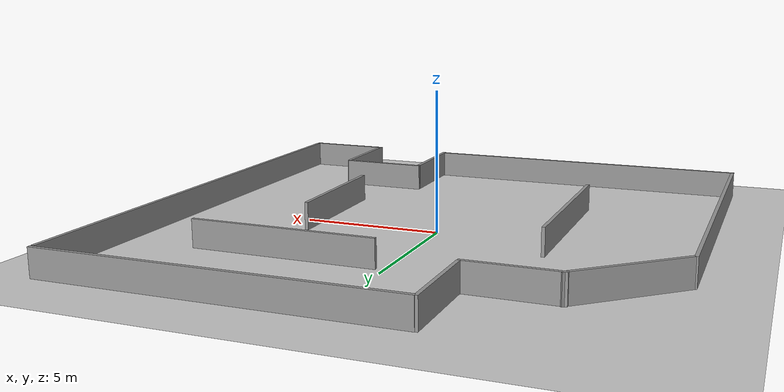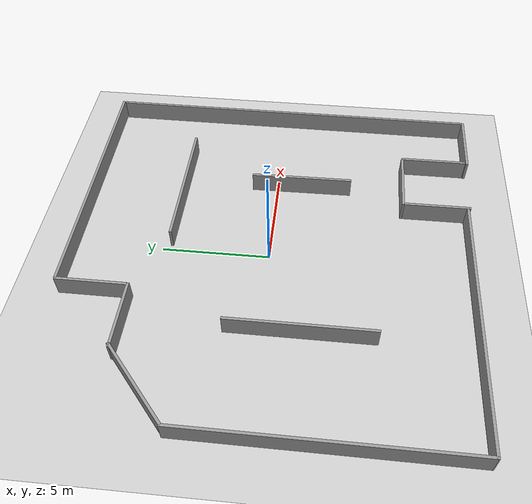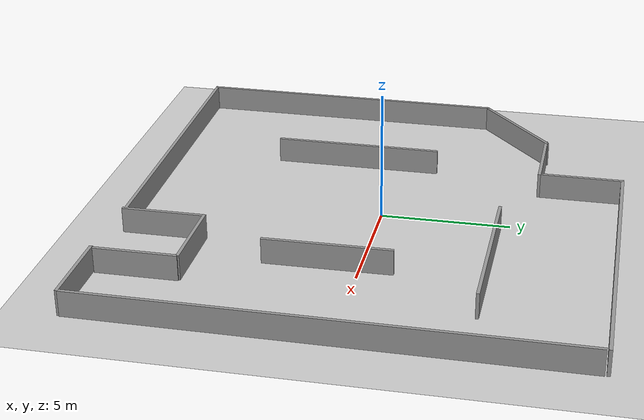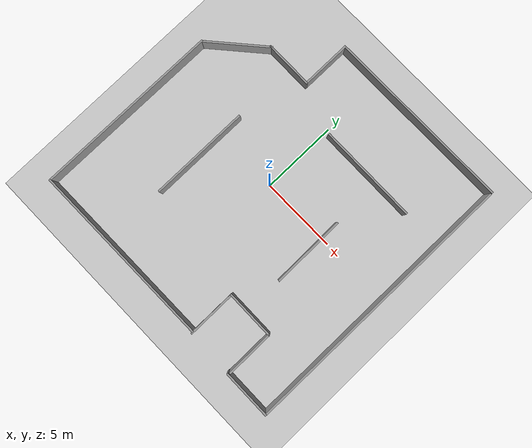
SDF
<sdf version="1.7">
 <world name="default">
  <light name="sun" type="directional">
   <pose>0 0 10 0 -0 0</pose>
   <diffuse>0.8 0.8 0.8 1</diffuse>
   <specular>0.2 0.2 0.2 1</specular>
   <attenuation>
    <range>1000</range>
    <constant>0.9</constant>
    <linear>0.01</linear>
    <quadratic>0.001</quadratic>
   </attenuation>
   <direction>-0.5 0.1 -0.9</direction>
   <spot><inner_angle>0</inner_angle><outer_angle>0</outer_angle><falloff>0</falloff></spot>
  </light>
  <model name="ground_plane">
   <static>1</static>
   <link name="link">
    <collision name="collision">
     <geometry><plane><normal>0 0 1</normal><size>100 100</size></plane></geometry>
     <surface>
      <contact><collide_bitmask>65535</collide_bitmask></contact>
      <friction><ode><mu>100</mu><mu2>50</mu2></ode></friction>
     </surface>
    </collision>
    <visual name="visual">
     <cast_shadows>0</cast_shadows>
     <geometry><plane><normal>0 0 1</normal><size>100 100</size></plane></geometry>
     <material>
      <script><uri>file://media/materials/scripts/gazebo.material</uri><name>Gazebo/Grey</name></script>
     </material>
    </visual>
   </link>
  </model>
  <gravity>0 0 -9.8</gravity>
  <magnetic_field>6e-06 2.3e-05 -4.2e-05</magnetic_field>
  <atmosphere type="adiabatic"/>
  <physics type="ode">
   <max_step_size>0.001</max_step_size>
   <real_time_factor>1</real_time_factor>
   <real_time_update_rate>1000</real_time_update_rate>
  </physics>
  <scene><ambient>0.4 0.4 0.4 1</ambient><background>0.7 0.7 0.7 1</background><shadows>1</shadows></scene>
  <spherical_coordinates>
   <surface_model>EARTH_WGS84</surface_model>
   <latitude_deg>0</latitude_deg>
   <longitude_deg>0</longitude_deg>
   <elevation>0</elevation>
   <heading_deg>0</heading_deg>
  </spherical_coordinates>
  <model name="paredemapping">
   <link name="link_0">
    <inertial>
     <mass>1.55641</mass>
     <inertia><ixx>20.0874</ixx><ixy>0</ixy><ixz>0</ixz><iyy>0.131744</iyy><iyz>0</iyz><izz>19.9597</izz></inertia>
    </inertial>
    <pose>2.53046 10.1722 0 0 0 -1.5676</pose>
    <visual name="visual">
     <geometry><box><size>0.125495 12.4046 1</size></box></geometry>
     <material>
      <lighting>1</lighting>
      <script><uri>file://media/materials/scripts/gazebo.material</uri><name>Gazebo/Grey</name></script>
      <shader type="pixel"/>
     </material>
    </visual>
    <collision name="collision">
     <geometry><box><size>0.125495 12.4046 1</size></box></geometry>
     <surface>
      <friction>
       <ode><mu>1</mu><mu2>1</mu2><fdir1>0 0 0</fdir1><slip1>0</slip1><slip2>0</slip2></ode>
       <torsional>
        <coefficient>1</coefficient>
        <patch_radius>0</patch_radius>
        <surface_radius>0</surface_radius>
        <use_patch_radius>1</use_patch_radius>
        <ode><slip>0</slip></ode>
       </torsional>
      </friction>
      <bounce><restitution_coefficient>0</restitution_coefficient><threshold>1e+06</threshold></bounce>
      <contact>
       <collide_without_contact>0</collide_without_contact>
       <collide_without_contact_bitmask>1</collide_without_contact_bitmask>
       <collide_bitmask>1</collide_bitmask>
       <ode>
        <soft_cfm>0</soft_cfm>
        <soft_erp>0.2</soft_erp>
        <kp>1e+13</kp>
        <kd>1</kd>
        <max_vel>0.01</max_vel>
        <min_depth>0</min_depth>
       </ode>
       <bullet>
        <split_impulse>1</split_impulse>
        <split_impulse_penetration_threshold>-0.01</split_impulse_penetration_threshold>
        <soft_cfm>0</soft_cfm>
        <soft_erp>0.2</soft_erp>
        <kp>1e+13</kp>
        <kd>1</kd>
       </bullet>
      </contact>
     </surface>
    </collision>
   </link>
   <link name="link_0_clone">
    <inertial>
     <mass>2.30975</mass>
     <inertia><ixx>65.4202</ixx><ixy>0</ixy><ixz>0</ixz><iyy>0.195511</iyy><iyz>0</iyz><izz>65.2307</izz></inertia>
    </inertial>
    <pose>8.65116 0.872805 0 0 -0 3.13777</pose>
    <visual name="visual">
     <geometry><box><size>0.125495 18.4087 1</size></box></geometry>
     <material>
      <lighting>1</lighting>
      <script><uri>file://media/materials/scripts/gazebo.material</uri><name>Gazebo/Grey</name></script>
      <shader type="pixel"/>
     </material>
    </visual>
    <collision name="collision">
     <geometry><box><size>0.125495 18.4087 1</size></box></geometry>
     <surface>
      <friction>
       <ode><mu>1</mu><mu2>1</mu2><fdir1>0 0 0</fdir1><slip1>0</slip1><slip2>0</slip2></ode>
       <torsional>
        <coefficient>1</coefficient>
        <patch_radius>0</patch_radius>
        <surface_radius>0</surface_radius>
        <use_patch_radius>1</use_patch_radius>
        <ode><slip>0</slip></ode>
       </torsional>
      </friction>
      <bounce><restitution_coefficient>0</restitution_coefficient><threshold>1e+06</threshold></bounce>
      <contact>
       <collide_without_contact>0</collide_without_contact>
       <collide_without_contact_bitmask>1</collide_without_contact_bitmask>
       <collide_bitmask>1</collide_bitmask>
       <ode>
        <soft_cfm>0</soft_cfm>
        <soft_erp>0.2</soft_erp>
        <kp>1e+13</kp>
        <kd>1</kd>
        <max_vel>0.01</max_vel>
        <min_depth>0</min_depth>
       </ode>
       <bullet>
        <split_impulse>1</split_impulse>
        <split_impulse_penetration_threshold>-0.01</split_impulse_penetration_threshold>
        <soft_cfm>0</soft_cfm>
        <soft_erp>0.2</soft_erp>
        <kp>1e+13</kp>
        <kd>1</kd>
       </bullet>
      </contact>
     </surface>
    </collision>
   </link>
   <link name="link_0_clone_0">
    <inertial>
     <mass>0.407182</mass>
     <inertia>
      <ixx>0.39129</ixx>
      <ixy>0</ixy>
      <ixz>0</ixz>
      <iyy>0.0344663</iyy>
      <iyz>0</iyz>
      <izz>0.357892</izz>
     </inertia>
    </inertial>
    <pose>-3.70392 8.57587 0 0 -0 3.14029</pose>
    <visual name="visual">
     <geometry><box><size>0.125495 3.24525 1</size></box></geometry>
     <material>
      <lighting>1</lighting>
      <script><uri>file://media/materials/scripts/gazebo.material</uri><name>Gazebo/Grey</name></script>
      <shader type="pixel"/>
     </material>
    </visual>
    <collision name="collision">
     <geometry><box><size>0.125495 3.24525 1</size></box></geometry>
     <surface>
      <friction>
       <ode><mu>1</mu><mu2>1</mu2><fdir1>0 0 0</fdir1><slip1>0</slip1><slip2>0</slip2></ode>
       <torsional>
        <coefficient>1</coefficient>
        <patch_radius>0</patch_radius>
        <surface_radius>0</surface_radius>
        <use_patch_radius>1</use_patch_radius>
        <ode><slip>0</slip></ode>
       </torsional>
      </friction>
      <bounce><restitution_coefficient>0</restitution_coefficient><threshold>1e+06</threshold></bounce>
      <contact>
       <collide_without_contact>0</collide_without_contact>
       <collide_without_contact_bitmask>1</collide_without_contact_bitmask>
       <collide_bitmask>1</collide_bitmask>
       <ode>
        <soft_cfm>0</soft_cfm>
        <soft_erp>0.2</soft_erp>
        <kp>1e+13</kp>
        <kd>1</kd>
        <max_vel>0.01</max_vel>
        <min_depth>0</min_depth>
       </ode>
       <bullet>
        <split_impulse>1</split_impulse>
        <split_impulse_penetration_threshold>-0.01</split_impulse_penetration_threshold>
        <soft_cfm>0</soft_cfm>
        <soft_erp>0.2</soft_erp>
        <kp>1e+13</kp>
        <kd>1</kd>
       </bullet>
      </contact>
     </surface>
    </collision>
   </link>
   <link name="link_0_clone_0_clone">
    <inertial>
     <mass>0.407182</mass>
     <inertia>
      <ixx>0.39129</ixx>
      <ixy>0</ixy>
      <ixz>0</ixz>
      <iyy>0.0344663</iyy>
      <iyz>0</iyz>
      <izz>0.357892</izz>
     </inertia>
    </inertial>
    <pose>-5.27399 6.91366 0 0 -0 1.56615</pose>
    <visual name="visual">
     <geometry><box><size>0.125495 3.24525 1</size></box></geometry>
     <material>
      <lighting>1</lighting>
      <script><uri>file://media/materials/scripts/gazebo.material</uri><name>Gazebo/Grey</name></script>
      <shader type="pixel"/>
     </material>
    </visual>
    <collision name="collision">
     <geometry><box><size>0.125495 3.24525 1</size></box></geometry>
     <surface>
      <friction>
       <ode><mu>1</mu><mu2>1</mu2><fdir1>0 0 0</fdir1><slip1>0</slip1><slip2>0</slip2></ode>
       <torsional>
        <coefficient>1</coefficient>
        <patch_radius>0</patch_radius>
        <surface_radius>0</surface_radius>
        <use_patch_radius>1</use_patch_radius>
        <ode><slip>0</slip></ode>
       </torsional>
      </friction>
      <bounce><restitution_coefficient>0</restitution_coefficient><threshold>1e+06</threshold></bounce>
      <contact>
       <collide_without_contact>0</collide_without_contact>
       <collide_without_contact_bitmask>1</collide_without_contact_bitmask>
       <collide_bitmask>1</collide_bitmask>
       <ode>
        <soft_cfm>0</soft_cfm>
        <soft_erp>0.2</soft_erp>
        <kp>1e+13</kp>
        <kd>1</kd>
        <max_vel>0.01</max_vel>
        <min_depth>0</min_depth>
       </ode>
       <bullet>
        <split_impulse>1</split_impulse>
        <split_impulse_penetration_threshold>-0.01</split_impulse_penetration_threshold>
        <soft_cfm>0</soft_cfm>
        <soft_erp>0.2</soft_erp>
        <kp>1e+13</kp>
        <kd>1</kd>
       </bullet>
      </contact>
     </surface>
    </collision>
   </link>
   <link name="link_0_clone_0_clone_0">
    <inertial>
     <mass>0.545738</mass>
     <inertia>
      <ixx>0.905857</ixx>
      <ixy>0</ixy>
      <ixz>0</ixz>
      <iyy>0.0461944</iyy>
      <iyz>0</iyz>
      <izz>0.861095</izz>
     </inertia>
    </inertial>
    <pose>-8.34095 5.56049 0 0 -0 2.28859</pose>
    <visual name="visual">
     <geometry><box><size>0.125495 4.34954 1</size></box></geometry>
     <material>
      <lighting>1</lighting>
      <script><uri>file://media/materials/scripts/gazebo.material</uri><name>Gazebo/Grey</name></script>
      <shader type="pixel"/>
     </material>
    </visual>
    <collision name="collision">
     <geometry><box><size>0.125495 4.34954 1</size></box></geometry>
     <surface>
      <friction>
       <ode><mu>1</mu><mu2>1</mu2><fdir1>0 0 0</fdir1><slip1>0</slip1><slip2>0</slip2></ode>
       <torsional>
        <coefficient>1</coefficient>
        <patch_radius>0</patch_radius>
        <surface_radius>0</surface_radius>
        <use_patch_radius>1</use_patch_radius>
        <ode><slip>0</slip></ode>
       </torsional>
      </friction>
      <bounce><restitution_coefficient>0</restitution_coefficient><threshold>1e+06</threshold></bounce>
      <contact>
       <collide_without_contact>0</collide_without_contact>
       <collide_without_contact_bitmask>1</collide_without_contact_bitmask>
       <collide_bitmask>1</collide_bitmask>
       <ode>
        <soft_cfm>0</soft_cfm>
        <soft_erp>0.2</soft_erp>
        <kp>1e+13</kp>
        <kd>1</kd>
        <max_vel>0.01</max_vel>
        <min_depth>0</min_depth>
       </ode>
       <bullet>
        <split_impulse>1</split_impulse>
        <split_impulse_penetration_threshold>-0.01</split_impulse_penetration_threshold>
        <soft_cfm>0</soft_cfm>
        <soft_erp>0.2</soft_erp>
        <kp>1e+13</kp>
        <kd>1</kd>
       </bullet>
      </contact>
     </surface>
    </collision>
   </link>
   <link name="link_0_clone_0_clone_clone">
    <inertial>
     <mass>0.407182</mass>
     <inertia>
      <ixx>0.39129</ixx>
      <ixy>0</ixy>
      <ixz>0</ixz>
      <iyy>0.0344663</iyy>
      <iyz>0</iyz>
      <izz>0.357892</izz>
     </inertia>
    </inertial>
    <pose>3.88281 -5.08461 0 0 -0 1.56615</pose>
    <visual name="visual">
     <geometry><box><size>0.125495 3.24525 1</size></box></geometry>
     <material>
      <lighting>1</lighting>
      <script><uri>file://media/materials/scripts/gazebo.material</uri><name>Gazebo/Grey</name></script>
      <shader type="pixel"/>
     </material>
    </visual>
    <collision name="collision">
     <geometry><box><size>0.125495 3.24525 1</size></box></geometry>
     <surface>
      <friction>
       <ode><mu>1</mu><mu2>1</mu2><fdir1>0 0 0</fdir1><slip1>0</slip1><slip2>0</slip2></ode>
       <torsional>
        <coefficient>1</coefficient>
        <patch_radius>0</patch_radius>
        <surface_radius>0</surface_radius>
        <use_patch_radius>1</use_patch_radius>
        <ode><slip>0</slip></ode>
       </torsional>
      </friction>
      <bounce><restitution_coefficient>0</restitution_coefficient><threshold>1e+06</threshold></bounce>
      <contact>
       <collide_without_contact>0</collide_without_contact>
       <collide_without_contact_bitmask>1</collide_without_contact_bitmask>
       <collide_bitmask>1</collide_bitmask>
       <ode>
        <soft_cfm>0</soft_cfm>
        <soft_erp>0.2</soft_erp>
        <kp>1e+13</kp>
        <kd>1</kd>
        <max_vel>0.01</max_vel>
        <min_depth>0</min_depth>
       </ode>
       <bullet>
        <split_impulse>1</split_impulse>
        <split_impulse_penetration_threshold>-0.01</split_impulse_penetration_threshold>
        <soft_cfm>0</soft_cfm>
        <soft_erp>0.2</soft_erp>
        <kp>1e+13</kp>
        <kd>1</kd>
       </bullet>
      </contact>
     </surface>
    </collision>
   </link>
   <link name="link_0_clone_0_clone_clone_clone">
    <inertial>
     <mass>0.407182</mass>
     <inertia>
      <ixx>0.39129</ixx>
      <ixy>0</ixy>
      <ixz>0</ixz>
      <iyy>0.0344663</iyy>
      <iyz>0</iyz>
      <izz>0.357892</izz>
     </inertia>
    </inertial>
    <pose>7.02736 -8.35116 0 0 -0 1.56615</pose>
    <visual name="visual">
     <geometry><box><size>0.125495 3.24525 1</size></box></geometry>
     <material>
      <lighting>1</lighting>
      <script><uri>file://media/materials/scripts/gazebo.material</uri><name>Gazebo/Grey</name></script>
      <shader type="pixel"/>
     </material>
    </visual>
    <collision name="collision">
     <geometry><box><size>0.125495 3.24525 1</size></box></geometry>
     <surface>
      <friction>
       <ode><mu>1</mu><mu2>1</mu2><fdir1>0 0 0</fdir1><slip1>0</slip1><slip2>0</slip2></ode>
       <torsional>
        <coefficient>1</coefficient>
        <patch_radius>0</patch_radius>
        <surface_radius>0</surface_radius>
        <use_patch_radius>1</use_patch_radius>
        <ode><slip>0</slip></ode>
       </torsional>
      </friction>
      <bounce><restitution_coefficient>0</restitution_coefficient><threshold>1e+06</threshold></bounce>
      <contact>
       <collide_without_contact>0</collide_without_contact>
       <collide_without_contact_bitmask>1</collide_without_contact_bitmask>
       <collide_bitmask>1</collide_bitmask>
       <ode>
        <soft_cfm>0</soft_cfm>
        <soft_erp>0.2</soft_erp>
        <kp>1e+13</kp>
        <kd>1</kd>
        <max_vel>0.01</max_vel>
        <min_depth>0</min_depth>
       </ode>
       <bullet>
        <split_impulse>1</split_impulse>
        <split_impulse_penetration_threshold>-0.01</split_impulse_penetration_threshold>
        <soft_cfm>0</soft_cfm>
        <soft_erp>0.2</soft_erp>
        <kp>1e+13</kp>
        <kd>1</kd>
       </bullet>
      </contact>
     </surface>
    </collision>
   </link>
   <link name="link_0_clone_0_clone_clone_clone_0">
    <inertial>
     <mass>0.832673</mass>
     <inertia>
      <ixx>3.12544</ixx>
      <ixy>0</ixy>
      <ixz>0</ixz>
      <iyy>0.0704822</iyy>
      <iyz>0</iyz>
      <izz>3.05714</izz>
     </inertia>
    </inertial>
    <pose>2.75404 5.67464 0 0 -0 1.56615</pose>
    <visual name="visual">
     <geometry><box><size>0.125495 6.63642 1</size></box></geometry>
     <material>
      <lighting>1</lighting>
      <script><uri>file://media/materials/scripts/gazebo.material</uri><name>Gazebo/Grey</name></script>
      <shader type="pixel"/>
     </material>
    </visual>
    <collision name="collision">
     <geometry><box><size>0.125495 6.63642 1</size></box></geometry>
     <surface>
      <friction>
       <ode><mu>1</mu><mu2>1</mu2><fdir1>0 0 0</fdir1><slip1>0</slip1><slip2>0</slip2></ode>
       <torsional>
        <coefficient>1</coefficient>
        <patch_radius>0</patch_radius>
        <surface_radius>0</surface_radius>
        <use_patch_radius>1</use_patch_radius>
        <ode><slip>0</slip></ode>
       </torsional>
      </friction>
      <bounce><restitution_coefficient>0</restitution_coefficient><threshold>1e+06</threshold></bounce>
      <contact>
       <collide_without_contact>0</collide_without_contact>
       <collide_without_contact_bitmask>1</collide_without_contact_bitmask>
       <collide_bitmask>1</collide_bitmask>
       <ode>
        <soft_cfm>0</soft_cfm>
        <soft_erp>0.2</soft_erp>
        <kp>1e+13</kp>
        <kd>1</kd>
        <max_vel>0.01</max_vel>
        <min_depth>0</min_depth>
       </ode>
       <bullet>
        <split_impulse>1</split_impulse>
        <split_impulse_penetration_threshold>-0.01</split_impulse_penetration_threshold>
        <soft_cfm>0</soft_cfm>
        <soft_erp>0.2</soft_erp>
        <kp>1e+13</kp>
        <kd>1</kd>
       </bullet>
      </contact>
     </surface>
    </collision>
   </link>
   <link name="link_0_clone_0_clone_clone_clone_0_clone">
    <inertial>
     <mass>0.832673</mass>
     <inertia>
      <ixx>3.12544</ixx>
      <ixy>0</ixy>
      <ixz>0</ixz>
      <iyy>0.0704822</iyy>
      <iyz>0</iyz>
      <izz>3.05714</izz>
     </inertia>
    </inertial>
    <pose>-5.0654 -0.690107 0 0 -0 3.14025</pose>
    <visual name="visual">
     <geometry><box><size>0.125495 6.63642 1</size></box></geometry>
     <material>
      <lighting>1</lighting>
      <script><uri>file://media/materials/scripts/gazebo.material</uri><name>Gazebo/Grey</name></script>
      <shader type="pixel"/>
     </material>
    </visual>
    <collision name="collision">
     <geometry><box><size>0.125495 6.63642 1</size></box></geometry>
     <surface>
      <friction>
       <ode><mu>1</mu><mu2>1</mu2><fdir1>0 0 0</fdir1><slip1>0</slip1><slip2>0</slip2></ode>
       <torsional>
        <coefficient>1</coefficient>
        <patch_radius>0</patch_radius>
        <surface_radius>0</surface_radius>
        <use_patch_radius>1</use_patch_radius>
        <ode><slip>0</slip></ode>
       </torsional>
      </friction>
      <bounce><restitution_coefficient>0</restitution_coefficient><threshold>1e+06</threshold></bounce>
      <contact>
       <collide_without_contact>0</collide_without_contact>
       <collide_without_contact_bitmask>1</collide_without_contact_bitmask>
       <collide_bitmask>1</collide_bitmask>
       <ode>
        <soft_cfm>0</soft_cfm>
        <soft_erp>0.2</soft_erp>
        <kp>1e+13</kp>
        <kd>1</kd>
        <max_vel>0.01</max_vel>
        <min_depth>0</min_depth>
       </ode>
       <bullet>
        <split_impulse>1</split_impulse>
        <split_impulse_penetration_threshold>-0.01</split_impulse_penetration_threshold>
        <soft_cfm>0</soft_cfm>
        <soft_erp>0.2</soft_erp>
        <kp>1e+13</kp>
        <kd>1</kd>
       </bullet>
      </contact>
     </surface>
    </collision>
   </link>
   <link name="link_0_clone_0_clone_clone_clone_0_clone_0">
    <inertial>
     <mass>0.613952</mass>
     <inertia>
      <ixx>1.27618</ixx>
      <ixy>0</ixy>
      <ixz>0</ixz>
      <iyy>0.0519685</iyy>
      <iyz>0</iyz>
      <izz>1.22582</izz>
     </inertia>
    </inertial>
    <pose>3.63547 -0.089577 0 0 -0 -3.13137</pose>
    <visual name="visual">
     <geometry><box><size>0.125495 4.89322 1</size></box></geometry>
     <material>
      <lighting>1</lighting>
      <script><uri>file://media/materials/scripts/gazebo.material</uri><name>Gazebo/Grey</name></script>
      <shader type="pixel"/>
     </material>
    </visual>
    <collision name="collision">
     <geometry><box><size>0.125495 4.89322 1</size></box></geometry>
     <surface>
      <friction>
       <ode><mu>1</mu><mu2>1</mu2><fdir1>0 0 0</fdir1><slip1>0</slip1><slip2>0</slip2></ode>
       <torsional>
        <coefficient>1</coefficient>
        <patch_radius>0</patch_radius>
        <surface_radius>0</surface_radius>
        <use_patch_radius>1</use_patch_radius>
        <ode><slip>0</slip></ode>
       </torsional>
      </friction>
      <bounce><restitution_coefficient>0</restitution_coefficient><threshold>1e+06</threshold></bounce>
      <contact>
       <collide_without_contact>0</collide_without_contact>
       <collide_without_contact_bitmask>1</collide_without_contact_bitmask>
       <collide_bitmask>1</collide_bitmask>
       <ode>
        <soft_cfm>0</soft_cfm>
        <soft_erp>0.2</soft_erp>
        <kp>1e+13</kp>
        <kd>1</kd>
        <max_vel>0.01</max_vel>
        <min_depth>0</min_depth>
       </ode>
       <bullet>
        <split_impulse>1</split_impulse>
        <split_impulse_penetration_threshold>-0.01</split_impulse_penetration_threshold>
        <soft_cfm>0</soft_cfm>
        <soft_erp>0.2</soft_erp>
        <kp>1e+13</kp>
        <kd>1</kd>
       </bullet>
      </contact>
     </surface>
    </collision>
   </link>
   <link name="link_0_clone_1">
    <inertial>
     <mass>1.55641</mass>
     <inertia><ixx>20.0874</ixx><ixy>0</ixy><ixz>0</ixz><iyy>0.131744</iyy><iyz>0</iyz><izz>19.9597</izz></inertia>
    </inertial>
    <pose>-3.8982 -8.16943 0 0 0 -1.5676</pose>
    <visual name="visual">
     <geometry><box><size>0.125495 12.4046 1</size></box></geometry>
     <material>
      <lighting>1</lighting>
      <script><uri>file://media/materials/scripts/gazebo.material</uri><name>Gazebo/Grey</name></script>
      <shader type="pixel"/>
     </material>
    </visual>
    <collision name="collision">
     <geometry><box><size>0.125495 12.4046 1</size></box></geometry>
     <surface>
      <friction>
       <ode><mu>1</mu><mu2>1</mu2><fdir1>0 0 0</fdir1><slip1>0</slip1><slip2>0</slip2></ode>
       <torsional>
        <coefficient>1</coefficient>
        <patch_radius>0</patch_radius>
        <surface_radius>0</surface_radius>
        <use_patch_radius>1</use_patch_radius>
        <ode><slip>0</slip></ode>
       </torsional>
      </friction>
      <bounce><restitution_coefficient>0</restitution_coefficient><threshold>1e+06</threshold></bounce>
      <contact>
       <collide_without_contact>0</collide_without_contact>
       <collide_without_contact_bitmask>1</collide_without_contact_bitmask>
       <collide_bitmask>1</collide_bitmask>
       <ode>
        <soft_cfm>0</soft_cfm>
        <soft_erp>0.2</soft_erp>
        <kp>1e+13</kp>
        <kd>1</kd>
        <max_vel>0.01</max_vel>
        <min_depth>0</min_depth>
       </ode>
       <bullet>
        <split_impulse>1</split_impulse>
        <split_impulse_penetration_threshold>-0.01</split_impulse_penetration_threshold>
        <soft_cfm>0</soft_cfm>
        <soft_erp>0.2</soft_erp>
        <kp>1e+13</kp>
        <kd>1</kd>
       </bullet>
      </contact>
     </surface>
    </collision>
   </link>
   <link name="link_0_clone_2">
    <inertial>
     <mass>0.396797</mass>
     <inertia>
      <ixx>0.363771</ixx>
      <ixy>0</ixy>
      <ixz>0</ixz>
      <iyy>0.0335872</iyy>
      <iyz>0</iyz>
      <izz>0.331225</izz>
     </inertia>
    </inertial>
    <pose>2.31812 -6.70524 0 0 0 -3.1402</pose>
    <visual name="visual">
     <geometry><box><size>0.125495 3.16247 1</size></box></geometry>
     <material>
      <lighting>1</lighting>
      <script><uri>file://media/materials/scripts/gazebo.material</uri><name>Gazebo/Grey</name></script>
      <shader type="pixel"/>
     </material>
    </visual>
    <collision name="collision">
     <geometry><box><size>0.125495 3.16247 1</size></box></geometry>
     <surface>
      <friction>
       <ode><mu>1</mu><mu2>1</mu2><fdir1>0 0 0</fdir1><slip1>0</slip1><slip2>0</slip2></ode>
       <torsional>
        <coefficient>1</coefficient>
        <patch_radius>0</patch_radius>
        <surface_radius>0</surface_radius>
        <use_patch_radius>1</use_patch_radius>
        <ode><slip>0</slip></ode>
       </torsional>
      </friction>
      <bounce><restitution_coefficient>0</restitution_coefficient><threshold>1e+06</threshold></bounce>
      <contact>
       <collide_without_contact>0</collide_without_contact>
       <collide_without_contact_bitmask>1</collide_without_contact_bitmask>
       <collide_bitmask>1</collide_bitmask>
       <ode>
        <soft_cfm>0</soft_cfm>
        <soft_erp>0.2</soft_erp>
        <kp>1e+13</kp>
        <kd>1</kd>
        <max_vel>0.01</max_vel>
        <min_depth>0</min_depth>
       </ode>
       <bullet>
        <split_impulse>1</split_impulse>
        <split_impulse_penetration_threshold>-0.01</split_impulse_penetration_threshold>
        <soft_cfm>0</soft_cfm>
        <soft_erp>0.2</soft_erp>
        <kp>1e+13</kp>
        <kd>1</kd>
       </bullet>
      </contact>
     </surface>
    </collision>
   </link>
   <link name="link_0_clone_2_clone">
    <inertial>
     <mass>0.396797</mass>
     <inertia>
      <ixx>0.363771</ixx>
      <ixy>0</ixy>
      <ixz>0</ixz>
      <iyy>0.0335872</iyy>
      <iyz>0</iyz>
      <izz>0.331225</izz>
     </inertia>
    </inertial>
    <pose>5.50136 -6.67202 0 0 0 -3.1402</pose>
    <visual name="visual">
     <geometry><box><size>0.125495 3.16247 1</size></box></geometry>
     <material>
      <lighting>1</lighting>
      <script><uri>file://media/materials/scripts/gazebo.material</uri><name>Gazebo/Grey</name></script>
      <shader type="pixel"/>
     </material>
    </visual>
    <collision name="collision">
     <geometry><box><size>0.125495 3.16247 1</size></box></geometry>
     <surface>
      <friction>
       <ode><mu>1</mu><mu2>1</mu2><fdir1>0 0 0</fdir1><slip1>0</slip1><slip2>0</slip2></ode>
       <torsional>
        <coefficient>1</coefficient>
        <patch_radius>0</patch_radius>
        <surface_radius>0</surface_radius>
        <use_patch_radius>1</use_patch_radius>
        <ode><slip>0</slip></ode>
       </torsional>
      </friction>
      <bounce><restitution_coefficient>0</restitution_coefficient><threshold>1e+06</threshold></bounce>
      <contact>
       <collide_without_contact>0</collide_without_contact>
       <collide_without_contact_bitmask>1</collide_without_contact_bitmask>
       <collide_bitmask>1</collide_bitmask>
       <ode>
        <soft_cfm>0</soft_cfm>
        <soft_erp>0.2</soft_erp>
        <kp>1e+13</kp>
        <kd>1</kd>
        <max_vel>0.01</max_vel>
        <min_depth>0</min_depth>
       </ode>
       <bullet>
        <split_impulse>1</split_impulse>
        <split_impulse_penetration_threshold>-0.01</split_impulse_penetration_threshold>
        <soft_cfm>0</soft_cfm>
        <soft_erp>0.2</soft_erp>
        <kp>1e+13</kp>
        <kd>1</kd>
       </bullet>
      </contact>
     </surface>
    </collision>
   </link>
   <link name="link_0_clone_clone">
    <inertial>
     <mass>1.55641</mass>
     <inertia><ixx>20.0874</ixx><ixy>0</ixy><ixz>0</ixz><iyy>0.131744</iyy><iyz>0</iyz><izz>19.9597</izz></inertia>
    </inertial>
    <pose>-10.0183 -2.00748 0 0 -0 3.13777</pose>
    <visual name="visual">
     <geometry><box><size>0.125495 12.4046 1</size></box></geometry>
     <material>
      <lighting>1</lighting>
      <script><uri>file://media/materials/scripts/gazebo.material</uri><name>Gazebo/Grey</name></script>
      <shader type="pixel"/>
     </material>
    </visual>
    <collision name="collision">
     <geometry><box><size>0.125495 12.4046 1</size></box></geometry>
     <surface>
      <friction>
       <ode><mu>1</mu><mu2>1</mu2><fdir1>0 0 0</fdir1><slip1>0</slip1><slip2>0</slip2></ode>
       <torsional>
        <coefficient>1</coefficient>
        <patch_radius>0</patch_radius>
        <surface_radius>0</surface_radius>
        <use_patch_radius>1</use_patch_radius>
        <ode><slip>0</slip></ode>
       </torsional>
      </friction>
      <bounce><restitution_coefficient>0</restitution_coefficient><threshold>1e+06</threshold></bounce>
      <contact>
       <collide_without_contact>0</collide_without_contact>
       <collide_without_contact_bitmask>1</collide_without_contact_bitmask>
       <collide_bitmask>1</collide_bitmask>
       <ode>
        <soft_cfm>0</soft_cfm>
        <soft_erp>0.2</soft_erp>
        <kp>1e+13</kp>
        <kd>1</kd>
        <max_vel>0.01</max_vel>
        <min_depth>0</min_depth>
       </ode>
       <bullet>
        <split_impulse>1</split_impulse>
        <split_impulse_penetration_threshold>-0.01</split_impulse_penetration_threshold>
        <soft_cfm>0</soft_cfm>
        <soft_erp>0.2</soft_erp>
        <kp>1e+13</kp>
        <kd>1</kd>
       </bullet>
      </contact>
     </surface>
    </collision>
   </link>
   <static>0</static>
   <pose>0.831146 -1.07756 0.499977 0 -2e-06 -2.2e-05</pose>
  </model>
 </world>
</sdf>
